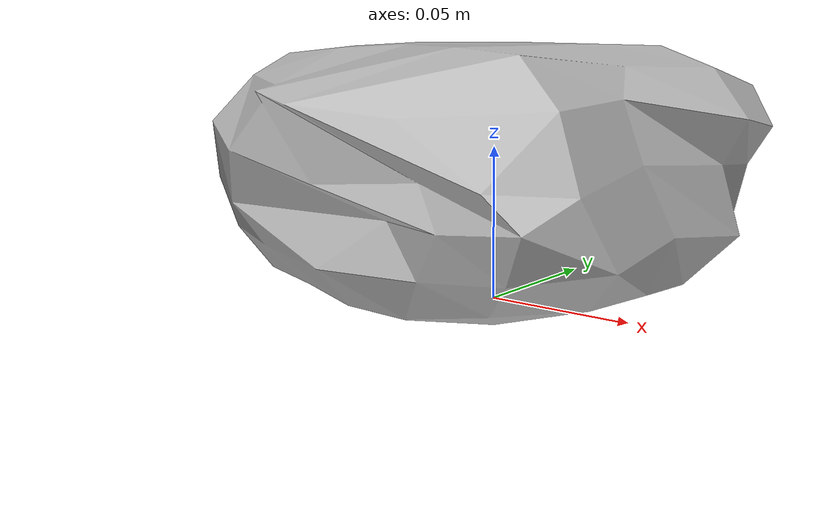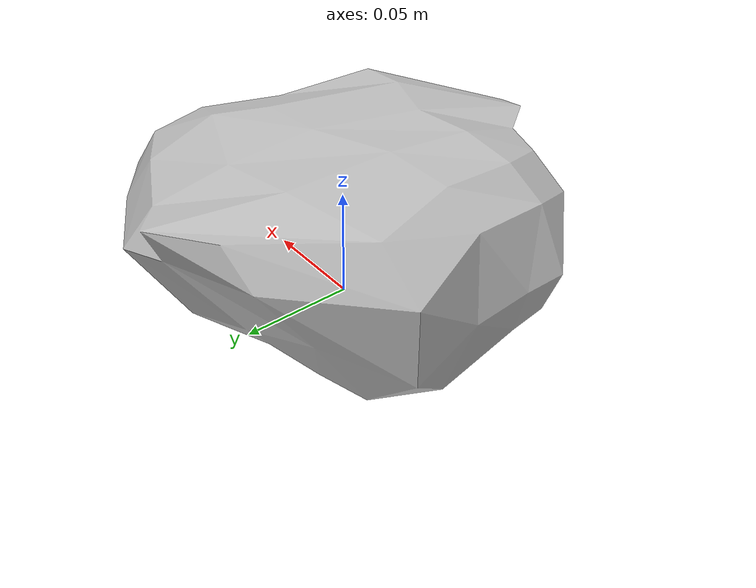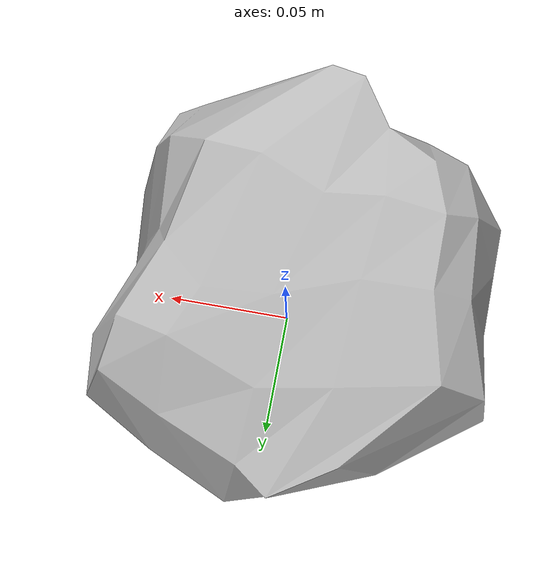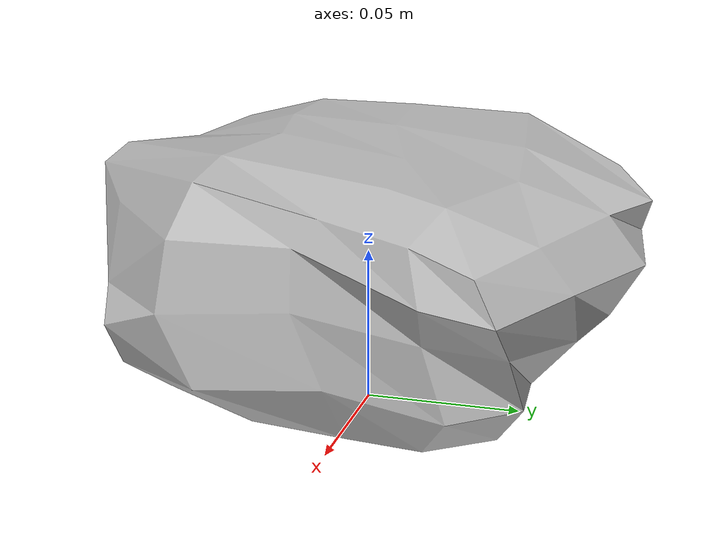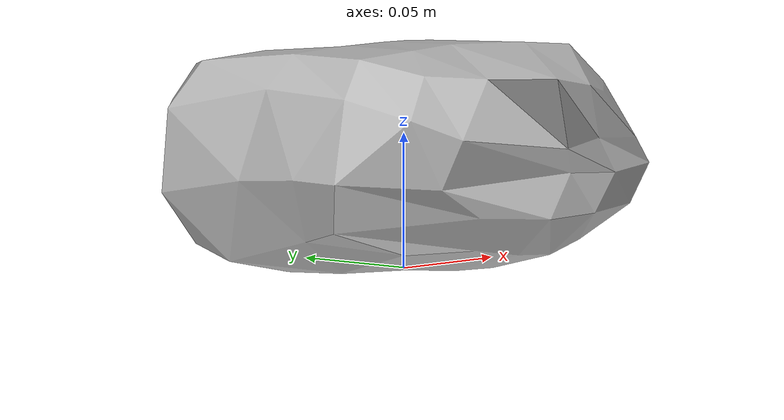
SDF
<?xml version="1.0" ?>
<sdf version="1.4">
  <model name="small_rock">
    <link name="link">
      <inertial>
        <mass>9.0</mass>
        <inertia>
          <ixx>0.90</ixx>
          <ixy>0.20</ixy>
          <ixz>0.20</ixz>
          <iyy>0.90</iyy>
          <iyz>0.20</iyz>
          <izz>0.90</izz>
        </inertia>
      </inertial>
      <pose>0 0 0.01539 1.5708 0 0</pose>
      <collision name="collision">
        <geometry>
          <mesh>
            <uri>model://hyq_small_rock/mesh/rock.dae</uri>
            <scale>0.05 0.05 0.05</scale>
          </mesh>
        </geometry>
        <surface>
          <bounce>
            <restitution_coefficient>0.01</restitution_coefficient>
            <threshold>5.0</threshold>
          </bounce>
          <friction>
            <ode>
              <mu>10</mu>
              <mu2>10</mu2>
            </ode>
          </friction>
          <contact>
            <ode>
              <soft_cfm>0.001</soft_cfm>
              <kp>100000.0</kp>
              <kd>1000.0</kd>
            </ode>
          </contact>
        </surface>
      </collision>
      <visual name="visual">
        <geometry>
          <mesh>
            <uri>model://hyq_small_rock/mesh/rock.dae</uri>
            <scale>0.05 0.05 0.05</scale>
          </mesh>
        </geometry>
      </visual>
    </link>
  </model>
</sdf>
